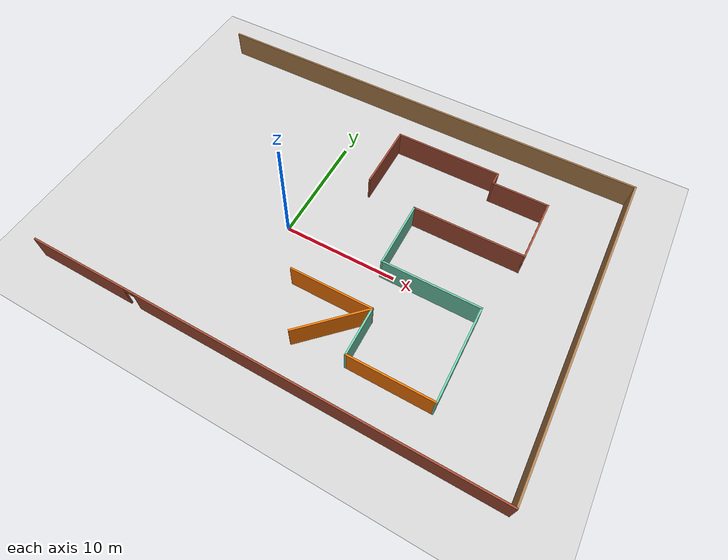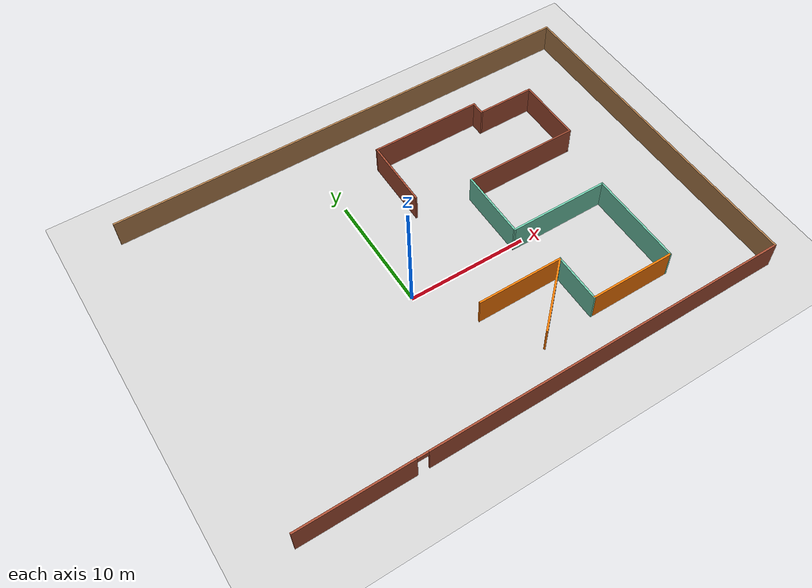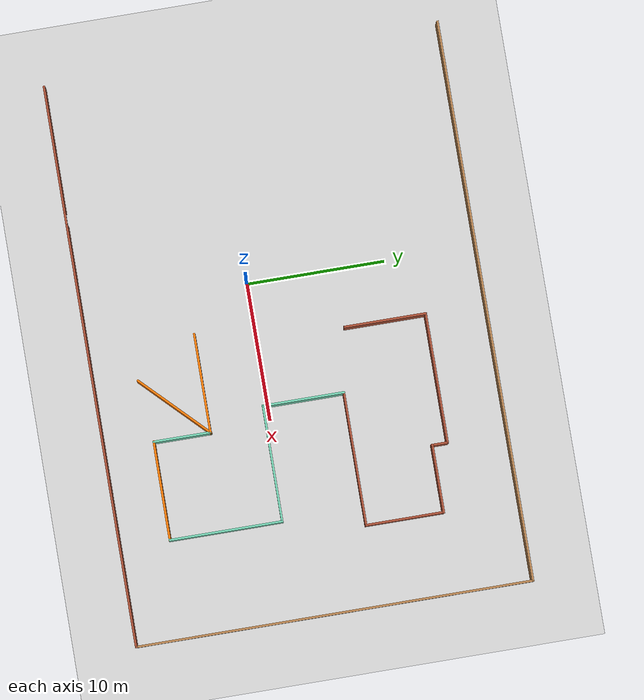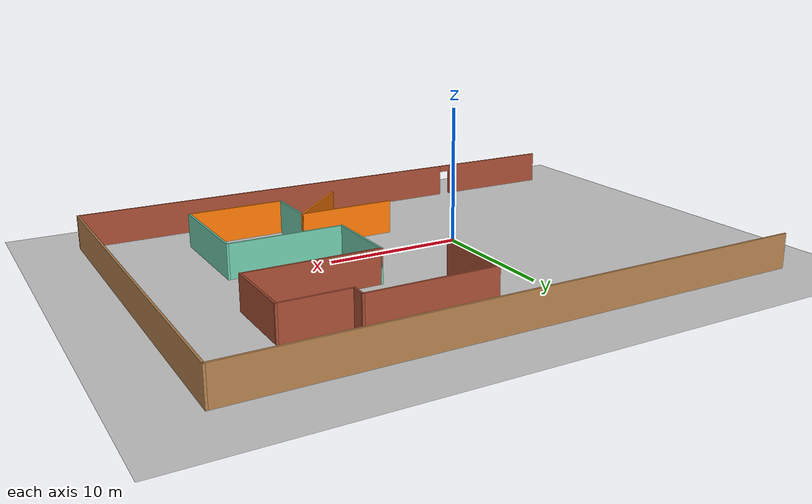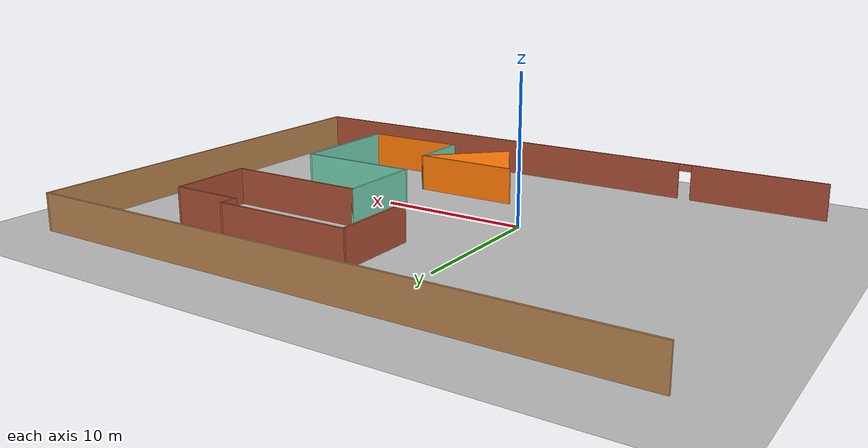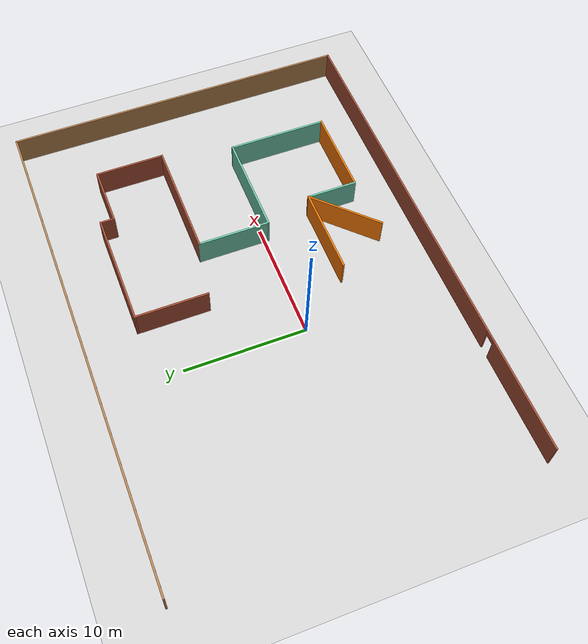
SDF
<sdf version="1.7">
 <world name="default">
  <model name="ground_plane">
   <static>true</static>
   <link name="link">
    <collision name="collision">
     <geometry><plane><normal>0 0 1</normal><size>100 100</size></plane></geometry>
    </collision>
    <visual name="visual">
     <geometry><plane><normal>0 0 1</normal><size>100 100</size></plane></geometry>
     <material>
      <ambient>0.8 0.8 0.8 1</ambient>
      <diffuse>0.8 0.8 0.8 1</diffuse>
      <specular>0.8 0.8 0.8 1</specular>
     </material>
    </visual>
   </link>
  </model>
  <model name="AMR_navigation_world">
   <link name="Wall_12">
    <pose>0.062232 14.2722 0 0 -0 0</pose>
    <visual name="Wall_12_Visual">
     <pose>0 0 1.25 0 -0 0</pose>
     <geometry><box><size>40.75 0.15 2.5</size></box></geometry>
     <material>
      <script><uri>file://media/materials/scripts/gazebo.material</uri><name>Gazebo/Wood</name></script>
      <ambient>0 1 0 1</ambient>
      <shader type="pixel"/>
     </material>
     <meta><layer>0</layer></meta>
    </visual>
    <collision name="Wall_12_Collision">
     <pose>0 0 1.25 0 -0 0</pose>
     <geometry><box><size>40.75 0.15 2.5</size></box></geometry>
     <surface>
      <friction>
       <ode><mu>1</mu><mu2>1</mu2><fdir1>0 0 0</fdir1><slip1>0</slip1><slip2>0</slip2></ode>
       <torsional>
        <coefficient>1</coefficient>
        <patch_radius>0</patch_radius>
        <surface_radius>0</surface_radius>
        <use_patch_radius>1</use_patch_radius>
        <ode><slip>0</slip></ode>
       </torsional>
      </friction>
      <bounce><restitution_coefficient>0</restitution_coefficient><threshold>1e+06</threshold></bounce>
      <contact>
       <collide_without_contact>0</collide_without_contact>
       <collide_without_contact_bitmask>1</collide_without_contact_bitmask>
       <collide_bitmask>1</collide_bitmask>
       <ode>
        <soft_cfm>0</soft_cfm>
        <soft_erp>0.2</soft_erp>
        <kp>1e+13</kp>
        <kd>1</kd>
        <max_vel>0.01</max_vel>
        <min_depth>0</min_depth>
       </ode>
       <bullet>
        <split_impulse>1</split_impulse>
        <split_impulse_penetration_threshold>-0.01</split_impulse_penetration_threshold>
        <soft_cfm>0</soft_cfm>
        <soft_erp>0.2</soft_erp>
        <kp>1e+13</kp>
        <kd>1</kd>
       </bullet>
      </contact>
     </surface>
    </collision>
   </link>
   <link name="Wall_13">
    <pose>20.3622 -0.027791 0 0 0 -1.5708</pose>
    <visual name="Wall_13_Visual">
     <pose>0 0 1.25 0 -0 0</pose>
     <geometry><box><size>28.75 0.15 2.5</size></box></geometry>
     <material>
      <script><uri>file://media/materials/scripts/gazebo.material</uri><name>Gazebo/Wood</name></script>
      <ambient>0 0 1 1</ambient>
      <shader type="pixel"/>
     </material>
     <meta><layer>0</layer></meta>
    </visual>
    <collision name="Wall_13_Collision">
     <pose>0 0 1.25 0 -0 0</pose>
     <geometry><box><size>28.75 0.15 2.5</size></box></geometry>
     <surface>
      <friction>
       <ode><mu>1</mu><mu2>1</mu2><fdir1>0 0 0</fdir1><slip1>0</slip1><slip2>0</slip2></ode>
       <torsional>
        <coefficient>1</coefficient>
        <patch_radius>0</patch_radius>
        <surface_radius>0</surface_radius>
        <use_patch_radius>1</use_patch_radius>
        <ode><slip>0</slip></ode>
       </torsional>
      </friction>
      <bounce><restitution_coefficient>0</restitution_coefficient><threshold>1e+06</threshold></bounce>
      <contact>
       <collide_without_contact>0</collide_without_contact>
       <collide_without_contact_bitmask>1</collide_without_contact_bitmask>
       <collide_bitmask>1</collide_bitmask>
       <ode>
        <soft_cfm>0</soft_cfm>
        <soft_erp>0.2</soft_erp>
        <kp>1e+13</kp>
        <kd>1</kd>
        <max_vel>0.01</max_vel>
        <min_depth>0</min_depth>
       </ode>
       <bullet>
        <split_impulse>1</split_impulse>
        <split_impulse_penetration_threshold>-0.01</split_impulse_penetration_threshold>
        <soft_cfm>0</soft_cfm>
        <soft_erp>0.2</soft_erp>
        <kp>1e+13</kp>
        <kd>1</kd>
       </bullet>
      </contact>
     </surface>
    </collision>
   </link>
   <link name="Wall_14">
    <pose>0.062232 -14.3278 0 0 -0 3.14159</pose>
    <visual name="Wall_14_Visual_0">
     <pose>-5.04987 0 1.25 0 -0 0</pose>
     <geometry><box><size>30.6503 0.15 2.5</size></box></geometry>
     <material>
      <script><uri>file://media/materials/scripts/gazebo.material</uri><name>Gazebo/Bricks</name></script>
      <ambient>1 1 0 1</ambient>
      <shader type="pixel"/>
     </material>
     <meta><layer>0</layer></meta>
    </visual>
    <visual name="Wall_14_Visual_1">
     <pose>15.7751 0 1.25 0 -0 0</pose>
     <geometry><box><size>9.19974 0.15 2.5</size></box></geometry>
     <material>
      <script><uri>file://media/materials/scripts/gazebo.material</uri><name>Gazebo/Bricks</name></script>
      <ambient>1 1 1 1</ambient>
      <shader type="pixel"/>
     </material>
     <meta><layer>0</layer></meta>
    </visual>
    <visual name="Wall_14_Visual_2">
     <pose>10.7253 0 2.25 0 -0 0</pose>
     <geometry><box><size>0.9 0.15 0.5</size></box></geometry>
     <material>
      <script><uri>file://media/materials/scripts/gazebo.material</uri><name>Gazebo/Bricks</name></script>
      <ambient>1 1 1 1</ambient>
      <shader type="pixel"/>
     </material>
     <meta><layer>0</layer></meta>
    </visual>
    <collision name="Wall_14_Collision_0">
     <pose>-5.04987 0 1.25 0 -0 0</pose>
     <geometry><box><size>30.6503 0.15 2.5</size></box></geometry>
     <surface>
      <friction>
       <ode><mu>1</mu><mu2>1</mu2><fdir1>0 0 0</fdir1><slip1>0</slip1><slip2>0</slip2></ode>
       <torsional>
        <coefficient>1</coefficient>
        <patch_radius>0</patch_radius>
        <surface_radius>0</surface_radius>
        <use_patch_radius>1</use_patch_radius>
        <ode><slip>0</slip></ode>
       </torsional>
      </friction>
      <bounce><restitution_coefficient>0</restitution_coefficient><threshold>1e+06</threshold></bounce>
      <contact>
       <collide_without_contact>0</collide_without_contact>
       <collide_without_contact_bitmask>1</collide_without_contact_bitmask>
       <collide_bitmask>1</collide_bitmask>
       <ode>
        <soft_cfm>0</soft_cfm>
        <soft_erp>0.2</soft_erp>
        <kp>1e+13</kp>
        <kd>1</kd>
        <max_vel>0.01</max_vel>
        <min_depth>0</min_depth>
       </ode>
       <bullet>
        <split_impulse>1</split_impulse>
        <split_impulse_penetration_threshold>-0.01</split_impulse_penetration_threshold>
        <soft_cfm>0</soft_cfm>
        <soft_erp>0.2</soft_erp>
        <kp>1e+13</kp>
        <kd>1</kd>
       </bullet>
      </contact>
     </surface>
    </collision>
    <collision name="Wall_14_Collision_1">
     <pose>15.7751 0 1.25 0 -0 0</pose>
     <geometry><box><size>9.19974 0.15 2.5</size></box></geometry>
     <surface>
      <friction>
       <ode><mu>1</mu><mu2>1</mu2><fdir1>0 0 0</fdir1><slip1>0</slip1><slip2>0</slip2></ode>
       <torsional>
        <coefficient>1</coefficient>
        <patch_radius>0</patch_radius>
        <surface_radius>0</surface_radius>
        <use_patch_radius>1</use_patch_radius>
        <ode><slip>0</slip></ode>
       </torsional>
      </friction>
      <bounce><restitution_coefficient>0</restitution_coefficient><threshold>1e+06</threshold></bounce>
      <contact>
       <collide_without_contact>0</collide_without_contact>
       <collide_without_contact_bitmask>1</collide_without_contact_bitmask>
       <collide_bitmask>1</collide_bitmask>
       <ode>
        <soft_cfm>0</soft_cfm>
        <soft_erp>0.2</soft_erp>
        <kp>1e+13</kp>
        <kd>1</kd>
        <max_vel>0.01</max_vel>
        <min_depth>0</min_depth>
       </ode>
       <bullet>
        <split_impulse>1</split_impulse>
        <split_impulse_penetration_threshold>-0.01</split_impulse_penetration_threshold>
        <soft_cfm>0</soft_cfm>
        <soft_erp>0.2</soft_erp>
        <kp>1e+13</kp>
        <kd>1</kd>
       </bullet>
      </contact>
     </surface>
    </collision>
    <collision name="Wall_14_Collision_2">
     <pose>10.7253 0 2.25 0 -0 0</pose>
     <geometry><box><size>0.9 0.15 0.5</size></box></geometry>
     <surface>
      <friction>
       <ode><mu>1</mu><mu2>1</mu2><fdir1>0 0 0</fdir1><slip1>0</slip1><slip2>0</slip2></ode>
       <torsional>
        <coefficient>1</coefficient>
        <patch_radius>0</patch_radius>
        <surface_radius>0</surface_radius>
        <use_patch_radius>1</use_patch_radius>
        <ode><slip>0</slip></ode>
       </torsional>
      </friction>
      <bounce><restitution_coefficient>0</restitution_coefficient><threshold>1e+06</threshold></bounce>
      <contact>
       <collide_without_contact>0</collide_without_contact>
       <collide_without_contact_bitmask>1</collide_without_contact_bitmask>
       <collide_bitmask>1</collide_bitmask>
       <ode>
        <soft_cfm>0</soft_cfm>
        <soft_erp>0.2</soft_erp>
        <kp>1e+13</kp>
        <kd>1</kd>
        <max_vel>0.01</max_vel>
        <min_depth>0</min_depth>
       </ode>
       <bullet>
        <split_impulse>1</split_impulse>
        <split_impulse_penetration_threshold>-0.01</split_impulse_penetration_threshold>
        <soft_cfm>0</soft_cfm>
        <soft_erp>0.2</soft_erp>
        <kp>1e+13</kp>
        <kd>1</kd>
       </bullet>
      </contact>
     </surface>
    </collision>
   </link>
   <link name="Wall_20">
    <pose>2.61467 -6.62104 0 0 -0 0</pose>
    <visual name="Wall_20_Visual">
     <pose>0 0 1.25 0 -0 0</pose>
     <geometry><box><size>7.25 0.15 2.5</size></box></geometry>
     <material>
      <script><uri>file://media/materials/scripts/gazebo.material</uri><name>Gazebo/Grey</name></script>
      <ambient>0.996078 0.47451 0.0196078 1</ambient>
      <shader type="pixel"/>
     </material>
     <meta><layer>0</layer></meta>
    </visual>
    <collision name="Wall_20_Collision">
     <pose>0 0 1.25 0 -0 0</pose>
     <geometry><box><size>7.25 0.15 2.5</size></box></geometry>
     <surface>
      <friction>
       <ode><mu>1</mu><mu2>1</mu2><fdir1>0 0 0</fdir1><slip1>0</slip1><slip2>0</slip2></ode>
       <torsional>
        <coefficient>1</coefficient>
        <patch_radius>0</patch_radius>
        <surface_radius>0</surface_radius>
        <use_patch_radius>1</use_patch_radius>
        <ode><slip>0</slip></ode>
       </torsional>
      </friction>
      <bounce><restitution_coefficient>0</restitution_coefficient><threshold>1e+06</threshold></bounce>
      <contact>
       <collide_without_contact>0</collide_without_contact>
       <collide_without_contact_bitmask>1</collide_without_contact_bitmask>
       <collide_bitmask>1</collide_bitmask>
       <ode>
        <soft_cfm>0</soft_cfm>
        <soft_erp>0.2</soft_erp>
        <kp>1e+13</kp>
        <kd>1</kd>
        <max_vel>0.01</max_vel>
        <min_depth>0</min_depth>
       </ode>
       <bullet>
        <split_impulse>1</split_impulse>
        <split_impulse_penetration_threshold>-0.01</split_impulse_penetration_threshold>
        <soft_cfm>0</soft_cfm>
        <soft_erp>0.2</soft_erp>
        <kp>1e+13</kp>
        <kd>1</kd>
       </bullet>
      </contact>
     </surface>
    </collision>
   </link>
   <link name="Wall_21">
    <pose>6.16467 -8.67104 0 0 0 -1.5708</pose>
    <visual name="Wall_21_Visual">
     <pose>0 0 1.25 0 -0 0</pose>
     <geometry><box><size>4.25 0.15 2.5</size></box></geometry>
     <material>
      <script><uri>file://media/materials/scripts/gazebo.material</uri><name>Gazebo/Grey</name></script>
      <ambient>0.435294 0.796078 0.67451 1</ambient>
      <shader type="pixel"/>
     </material>
     <meta><layer>0</layer></meta>
    </visual>
    <collision name="Wall_21_Collision">
     <pose>0 0 1.25 0 -0 0</pose>
     <geometry><box><size>4.25 0.15 2.5</size></box></geometry>
     <surface>
      <friction>
       <ode><mu>1</mu><mu2>1</mu2><fdir1>0 0 0</fdir1><slip1>0</slip1><slip2>0</slip2></ode>
       <torsional>
        <coefficient>1</coefficient>
        <patch_radius>0</patch_radius>
        <surface_radius>0</surface_radius>
        <use_patch_radius>1</use_patch_radius>
        <ode><slip>0</slip></ode>
       </torsional>
      </friction>
      <bounce><restitution_coefficient>0</restitution_coefficient><threshold>1e+06</threshold></bounce>
      <contact>
       <collide_without_contact>0</collide_without_contact>
       <collide_without_contact_bitmask>1</collide_without_contact_bitmask>
       <collide_bitmask>1</collide_bitmask>
       <ode>
        <soft_cfm>0</soft_cfm>
        <soft_erp>0.2</soft_erp>
        <kp>1e+13</kp>
        <kd>1</kd>
        <max_vel>0.01</max_vel>
        <min_depth>0</min_depth>
       </ode>
       <bullet>
        <split_impulse>1</split_impulse>
        <split_impulse_penetration_threshold>-0.01</split_impulse_penetration_threshold>
        <soft_cfm>0</soft_cfm>
        <soft_erp>0.2</soft_erp>
        <kp>1e+13</kp>
        <kd>1</kd>
       </bullet>
      </contact>
     </surface>
    </collision>
   </link>
   <link name="Wall_22">
    <pose>9.71467 -10.721 0 0 -0 0</pose>
    <visual name="Wall_22_Visual">
     <pose>0 0 1.25 0 -0 0</pose>
     <geometry><box><size>7.25 0.15 2.5</size></box></geometry>
     <material>
      <script><uri>file://media/materials/scripts/gazebo.material</uri><name>Gazebo/Grey</name></script>
      <ambient>0.996078 0.47451 0.0196078 1</ambient>
      <shader type="pixel"/>
     </material>
     <meta><layer>0</layer></meta>
    </visual>
    <collision name="Wall_22_Collision">
     <pose>0 0 1.25 0 -0 0</pose>
     <geometry><box><size>7.25 0.15 2.5</size></box></geometry>
     <surface>
      <friction>
       <ode><mu>1</mu><mu2>1</mu2><fdir1>0 0 0</fdir1><slip1>0</slip1><slip2>0</slip2></ode>
       <torsional>
        <coefficient>1</coefficient>
        <patch_radius>0</patch_radius>
        <surface_radius>0</surface_radius>
        <use_patch_radius>1</use_patch_radius>
        <ode><slip>0</slip></ode>
       </torsional>
      </friction>
      <bounce><restitution_coefficient>0</restitution_coefficient><threshold>1e+06</threshold></bounce>
      <contact>
       <collide_without_contact>0</collide_without_contact>
       <collide_without_contact_bitmask>1</collide_without_contact_bitmask>
       <collide_bitmask>1</collide_bitmask>
       <ode>
        <soft_cfm>0</soft_cfm>
        <soft_erp>0.2</soft_erp>
        <kp>1e+13</kp>
        <kd>1</kd>
        <max_vel>0.01</max_vel>
        <min_depth>0</min_depth>
       </ode>
       <bullet>
        <split_impulse>1</split_impulse>
        <split_impulse_penetration_threshold>-0.01</split_impulse_penetration_threshold>
        <soft_cfm>0</soft_cfm>
        <soft_erp>0.2</soft_erp>
        <kp>1e+13</kp>
        <kd>1</kd>
       </bullet>
      </contact>
     </surface>
    </collision>
   </link>
   <link name="Wall_23">
    <pose>13.2647 -6.67104 0 0 -0 1.5708</pose>
    <visual name="Wall_23_Visual">
     <pose>0 0 1.25 0 -0 0</pose>
     <geometry><box><size>8.25 0.15 2.5</size></box></geometry>
     <material>
      <script><uri>file://media/materials/scripts/gazebo.material</uri><name>Gazebo/Grey</name></script>
      <ambient>0.435294 0.796078 0.67451 1</ambient>
      <shader type="pixel"/>
     </material>
     <meta><layer>0</layer></meta>
    </visual>
    <collision name="Wall_23_Collision">
     <pose>0 0 1.25 0 -0 0</pose>
     <geometry><box><size>8.25 0.15 2.5</size></box></geometry>
     <surface>
      <friction>
       <ode><mu>1</mu><mu2>1</mu2><fdir1>0 0 0</fdir1><slip1>0</slip1><slip2>0</slip2></ode>
       <torsional>
        <coefficient>1</coefficient>
        <patch_radius>0</patch_radius>
        <surface_radius>0</surface_radius>
        <use_patch_radius>1</use_patch_radius>
        <ode><slip>0</slip></ode>
       </torsional>
      </friction>
      <bounce><restitution_coefficient>0</restitution_coefficient><threshold>1e+06</threshold></bounce>
      <contact>
       <collide_without_contact>0</collide_without_contact>
       <collide_without_contact_bitmask>1</collide_without_contact_bitmask>
       <collide_bitmask>1</collide_bitmask>
       <ode>
        <soft_cfm>0</soft_cfm>
        <soft_erp>0.2</soft_erp>
        <kp>1e+13</kp>
        <kd>1</kd>
        <max_vel>0.01</max_vel>
        <min_depth>0</min_depth>
       </ode>
       <bullet>
        <split_impulse>1</split_impulse>
        <split_impulse_penetration_threshold>-0.01</split_impulse_penetration_threshold>
        <soft_cfm>0</soft_cfm>
        <soft_erp>0.2</soft_erp>
        <kp>1e+13</kp>
        <kd>1</kd>
       </bullet>
      </contact>
     </surface>
    </collision>
   </link>
   <link name="Wall_24">
    <pose>9.08967 -2.62104 0 0 -0 3.14159</pose>
    <visual name="Wall_24_Visual">
     <pose>0 0 1.25 0 -0 0</pose>
     <geometry><box><size>8.5 0.15 2.5</size></box></geometry>
     <material>
      <script><uri>file://media/materials/scripts/gazebo.material</uri><name>Gazebo/Grey</name></script>
      <ambient>0.435294 0.796078 0.67451 1</ambient>
      <shader type="pixel"/>
     </material>
     <meta><layer>0</layer></meta>
    </visual>
    <collision name="Wall_24_Collision">
     <pose>0 0 1.25 0 -0 0</pose>
     <geometry><box><size>8.5 0.15 2.5</size></box></geometry>
     <surface>
      <friction>
       <ode><mu>1</mu><mu2>1</mu2><fdir1>0 0 0</fdir1><slip1>0</slip1><slip2>0</slip2></ode>
       <torsional>
        <coefficient>1</coefficient>
        <patch_radius>0</patch_radius>
        <surface_radius>0</surface_radius>
        <use_patch_radius>1</use_patch_radius>
        <ode><slip>0</slip></ode>
       </torsional>
      </friction>
      <bounce><restitution_coefficient>0</restitution_coefficient><threshold>1e+06</threshold></bounce>
      <contact>
       <collide_without_contact>0</collide_without_contact>
       <collide_without_contact_bitmask>1</collide_without_contact_bitmask>
       <collide_bitmask>1</collide_bitmask>
       <ode>
        <soft_cfm>0</soft_cfm>
        <soft_erp>0.2</soft_erp>
        <kp>1e+13</kp>
        <kd>1</kd>
        <max_vel>0.01</max_vel>
        <min_depth>0</min_depth>
       </ode>
       <bullet>
        <split_impulse>1</split_impulse>
        <split_impulse_penetration_threshold>-0.01</split_impulse_penetration_threshold>
        <soft_cfm>0</soft_cfm>
        <soft_erp>0.2</soft_erp>
        <kp>1e+13</kp>
        <kd>1</kd>
       </bullet>
      </contact>
     </surface>
    </collision>
   </link>
   <link name="Wall_25">
    <pose>4.91467 0.303959 0 0 -0 1.5708</pose>
    <visual name="Wall_25_Visual">
     <pose>0 0 1.25 0 -0 0</pose>
     <geometry><box><size>6 0.15 2.5</size></box></geometry>
     <material>
      <script><uri>file://media/materials/scripts/gazebo.material</uri><name>Gazebo/Grey</name></script>
      <ambient>0.435294 0.796078 0.67451 1</ambient>
      <shader type="pixel"/>
     </material>
     <meta><layer>0</layer></meta>
    </visual>
    <collision name="Wall_25_Collision">
     <pose>0 0 1.25 0 -0 0</pose>
     <geometry><box><size>6 0.15 2.5</size></box></geometry>
     <surface>
      <friction>
       <ode><mu>1</mu><mu2>1</mu2><fdir1>0 0 0</fdir1><slip1>0</slip1><slip2>0</slip2></ode>
       <torsional>
        <coefficient>1</coefficient>
        <patch_radius>0</patch_radius>
        <surface_radius>0</surface_radius>
        <use_patch_radius>1</use_patch_radius>
        <ode><slip>0</slip></ode>
       </torsional>
      </friction>
      <bounce><restitution_coefficient>0</restitution_coefficient><threshold>1e+06</threshold></bounce>
      <contact>
       <collide_without_contact>0</collide_without_contact>
       <collide_without_contact_bitmask>1</collide_without_contact_bitmask>
       <collide_bitmask>1</collide_bitmask>
       <ode>
        <soft_cfm>0</soft_cfm>
        <soft_erp>0.2</soft_erp>
        <kp>1e+13</kp>
        <kd>1</kd>
        <max_vel>0.01</max_vel>
        <min_depth>0</min_depth>
       </ode>
       <bullet>
        <split_impulse>1</split_impulse>
        <split_impulse_penetration_threshold>-0.01</split_impulse_penetration_threshold>
        <soft_cfm>0</soft_cfm>
        <soft_erp>0.2</soft_erp>
        <kp>1e+13</kp>
        <kd>1</kd>
       </bullet>
      </contact>
     </surface>
    </collision>
   </link>
   <link name="Wall_26">
    <pose>9.71467 3.22896 0 0 -0 0</pose>
    <visual name="Wall_26_Visual">
     <pose>0 0 1.25 0 -0 0</pose>
     <geometry><box><size>9.75 0.15 2.5</size></box></geometry>
     <material>
      <script><uri>file://media/materials/scripts/gazebo.material</uri><name>Gazebo/Bricks</name></script>
      <ambient>1 1 1 1</ambient>
      <shader type="pixel"/>
     </material>
     <meta><layer>0</layer></meta>
    </visual>
    <collision name="Wall_26_Collision">
     <pose>0 0 1.25 0 -0 0</pose>
     <geometry><box><size>9.75 0.15 2.5</size></box></geometry>
     <surface>
      <friction>
       <ode><mu>1</mu><mu2>1</mu2><fdir1>0 0 0</fdir1><slip1>0</slip1><slip2>0</slip2></ode>
       <torsional>
        <coefficient>1</coefficient>
        <patch_radius>0</patch_radius>
        <surface_radius>0</surface_radius>
        <use_patch_radius>1</use_patch_radius>
        <ode><slip>0</slip></ode>
       </torsional>
      </friction>
      <bounce><restitution_coefficient>0</restitution_coefficient><threshold>1e+06</threshold></bounce>
      <contact>
       <collide_without_contact>0</collide_without_contact>
       <collide_without_contact_bitmask>1</collide_without_contact_bitmask>
       <collide_bitmask>1</collide_bitmask>
       <ode>
        <soft_cfm>0</soft_cfm>
        <soft_erp>0.2</soft_erp>
        <kp>1e+13</kp>
        <kd>1</kd>
        <max_vel>0.01</max_vel>
        <min_depth>0</min_depth>
       </ode>
       <bullet>
        <split_impulse>1</split_impulse>
        <split_impulse_penetration_threshold>-0.01</split_impulse_penetration_threshold>
        <soft_cfm>0</soft_cfm>
        <soft_erp>0.2</soft_erp>
        <kp>1e+13</kp>
        <kd>1</kd>
       </bullet>
      </contact>
     </surface>
    </collision>
   </link>
   <link name="Wall_27">
    <pose>14.5147 6.02896 0 0 -0 1.5708</pose>
    <visual name="Wall_27_Visual">
     <pose>0 0 1.25 0 -0 0</pose>
     <geometry><box><size>5.75 0.15 2.5</size></box></geometry>
     <material>
      <script><uri>file://media/materials/scripts/gazebo.material</uri><name>Gazebo/Bricks</name></script>
      <ambient>1 1 1 1</ambient>
      <shader type="pixel"/>
     </material>
     <meta><layer>0</layer></meta>
    </visual>
    <collision name="Wall_27_Collision">
     <pose>0 0 1.25 0 -0 0</pose>
     <geometry><box><size>5.75 0.15 2.5</size></box></geometry>
     <surface>
      <friction>
       <ode><mu>1</mu><mu2>1</mu2><fdir1>0 0 0</fdir1><slip1>0</slip1><slip2>0</slip2></ode>
       <torsional>
        <coefficient>1</coefficient>
        <patch_radius>0</patch_radius>
        <surface_radius>0</surface_radius>
        <use_patch_radius>1</use_patch_radius>
        <ode><slip>0</slip></ode>
       </torsional>
      </friction>
      <bounce><restitution_coefficient>0</restitution_coefficient><threshold>1e+06</threshold></bounce>
      <contact>
       <collide_without_contact>0</collide_without_contact>
       <collide_without_contact_bitmask>1</collide_without_contact_bitmask>
       <collide_bitmask>1</collide_bitmask>
       <ode>
        <soft_cfm>0</soft_cfm>
        <soft_erp>0.2</soft_erp>
        <kp>1e+13</kp>
        <kd>1</kd>
        <max_vel>0.01</max_vel>
        <min_depth>0</min_depth>
       </ode>
       <bullet>
        <split_impulse>1</split_impulse>
        <split_impulse_penetration_threshold>-0.01</split_impulse_penetration_threshold>
        <soft_cfm>0</soft_cfm>
        <soft_erp>0.2</soft_erp>
        <kp>1e+13</kp>
        <kd>1</kd>
       </bullet>
      </contact>
     </surface>
    </collision>
   </link>
   <link name="Wall_28">
    <pose>12.0897 8.82896 0 0 -0 3.14159</pose>
    <visual name="Wall_28_Visual">
     <pose>0 0 1.25 0 -0 0</pose>
     <geometry><box><size>5 0.15 2.5</size></box></geometry>
     <material>
      <script><uri>file://media/materials/scripts/gazebo.material</uri><name>Gazebo/Bricks</name></script>
      <ambient>1 1 1 1</ambient>
      <shader type="pixel"/>
     </material>
     <meta><layer>0</layer></meta>
    </visual>
    <collision name="Wall_28_Collision">
     <pose>0 0 1.25 0 -0 0</pose>
     <geometry><box><size>5 0.15 2.5</size></box></geometry>
     <surface>
      <friction>
       <ode><mu>1</mu><mu2>1</mu2><fdir1>0 0 0</fdir1><slip1>0</slip1><slip2>0</slip2></ode>
       <torsional>
        <coefficient>1</coefficient>
        <patch_radius>0</patch_radius>
        <surface_radius>0</surface_radius>
        <use_patch_radius>1</use_patch_radius>
        <ode><slip>0</slip></ode>
       </torsional>
      </friction>
      <bounce><restitution_coefficient>0</restitution_coefficient><threshold>1e+06</threshold></bounce>
      <contact>
       <collide_without_contact>0</collide_without_contact>
       <collide_without_contact_bitmask>1</collide_without_contact_bitmask>
       <collide_bitmask>1</collide_bitmask>
       <ode>
        <soft_cfm>0</soft_cfm>
        <soft_erp>0.2</soft_erp>
        <kp>1e+13</kp>
        <kd>1</kd>
        <max_vel>0.01</max_vel>
        <min_depth>0</min_depth>
       </ode>
       <bullet>
        <split_impulse>1</split_impulse>
        <split_impulse_penetration_threshold>-0.01</split_impulse_penetration_threshold>
        <soft_cfm>0</soft_cfm>
        <soft_erp>0.2</soft_erp>
        <kp>1e+13</kp>
        <kd>1</kd>
       </bullet>
      </contact>
     </surface>
    </collision>
   </link>
   <link name="Wall_29">
    <pose>9.66467 9.37896 0 0 -0 1.5708</pose>
    <visual name="Wall_29_Visual">
     <pose>0 0 1.25 0 -0 0</pose>
     <geometry><box><size>1.25 0.15 2.5</size></box></geometry>
     <material>
      <script><uri>file://media/materials/scripts/gazebo.material</uri><name>Gazebo/Bricks</name></script>
      <ambient>1 1 1 1</ambient>
      <shader type="pixel"/>
     </material>
     <meta><layer>0</layer></meta>
    </visual>
    <collision name="Wall_29_Collision">
     <pose>0 0 1.25 0 -0 0</pose>
     <geometry><box><size>1.25 0.15 2.5</size></box></geometry>
     <surface>
      <friction>
       <ode><mu>1</mu><mu2>1</mu2><fdir1>0 0 0</fdir1><slip1>0</slip1><slip2>0</slip2></ode>
       <torsional>
        <coefficient>1</coefficient>
        <patch_radius>0</patch_radius>
        <surface_radius>0</surface_radius>
        <use_patch_radius>1</use_patch_radius>
        <ode><slip>0</slip></ode>
       </torsional>
      </friction>
      <bounce><restitution_coefficient>0</restitution_coefficient><threshold>1e+06</threshold></bounce>
      <contact>
       <collide_without_contact>0</collide_without_contact>
       <collide_without_contact_bitmask>1</collide_without_contact_bitmask>
       <collide_bitmask>1</collide_bitmask>
       <ode>
        <soft_cfm>0</soft_cfm>
        <soft_erp>0.2</soft_erp>
        <kp>1e+13</kp>
        <kd>1</kd>
        <max_vel>0.01</max_vel>
        <min_depth>0</min_depth>
       </ode>
       <bullet>
        <split_impulse>1</split_impulse>
        <split_impulse_penetration_threshold>-0.01</split_impulse_penetration_threshold>
        <soft_cfm>0</soft_cfm>
        <soft_erp>0.2</soft_erp>
        <kp>1e+13</kp>
        <kd>1</kd>
       </bullet>
      </contact>
     </surface>
    </collision>
   </link>
   <link name="Wall_30">
    <pose>4.98967 9.92896 0 0 -0 3.14159</pose>
    <visual name="Wall_30_Visual">
     <pose>0 0 1.25 0 -0 0</pose>
     <geometry><box><size>9.5 0.15 2.5</size></box></geometry>
     <material>
      <script><uri>file://media/materials/scripts/gazebo.material</uri><name>Gazebo/Bricks</name></script>
      <ambient>1 1 1 1</ambient>
      <shader type="pixel"/>
     </material>
     <meta><layer>0</layer></meta>
    </visual>
    <collision name="Wall_30_Collision">
     <pose>0 0 1.25 0 -0 0</pose>
     <geometry><box><size>9.5 0.15 2.5</size></box></geometry>
     <surface>
      <friction>
       <ode><mu>1</mu><mu2>1</mu2><fdir1>0 0 0</fdir1><slip1>0</slip1><slip2>0</slip2></ode>
       <torsional>
        <coefficient>1</coefficient>
        <patch_radius>0</patch_radius>
        <surface_radius>0</surface_radius>
        <use_patch_radius>1</use_patch_radius>
        <ode><slip>0</slip></ode>
       </torsional>
      </friction>
      <bounce><restitution_coefficient>0</restitution_coefficient><threshold>1e+06</threshold></bounce>
      <contact>
       <collide_without_contact>0</collide_without_contact>
       <collide_without_contact_bitmask>1</collide_without_contact_bitmask>
       <collide_bitmask>1</collide_bitmask>
       <ode>
        <soft_cfm>0</soft_cfm>
        <soft_erp>0.2</soft_erp>
        <kp>1e+13</kp>
        <kd>1</kd>
        <max_vel>0.01</max_vel>
        <min_depth>0</min_depth>
       </ode>
       <bullet>
        <split_impulse>1</split_impulse>
        <split_impulse_penetration_threshold>-0.01</split_impulse_penetration_threshold>
        <soft_cfm>0</soft_cfm>
        <soft_erp>0.2</soft_erp>
        <kp>1e+13</kp>
        <kd>1</kd>
       </bullet>
      </contact>
     </surface>
    </collision>
   </link>
   <link name="Wall_31">
    <pose>0.314666 7.00396 0 0 0 -1.5708</pose>
    <visual name="Wall_31_Visual">
     <pose>0 0 1.25 0 -0 0</pose>
     <geometry><box><size>6 0.15 2.5</size></box></geometry>
     <material>
      <script><uri>file://media/materials/scripts/gazebo.material</uri><name>Gazebo/Bricks</name></script>
      <ambient>1 1 1 1</ambient>
      <shader type="pixel"/>
     </material>
     <meta><layer>0</layer></meta>
    </visual>
    <collision name="Wall_31_Collision">
     <pose>0 0 1.25 0 -0 0</pose>
     <geometry><box><size>6 0.15 2.5</size></box></geometry>
     <surface>
      <friction>
       <ode><mu>1</mu><mu2>1</mu2><fdir1>0 0 0</fdir1><slip1>0</slip1><slip2>0</slip2></ode>
       <torsional>
        <coefficient>1</coefficient>
        <patch_radius>0</patch_radius>
        <surface_radius>0</surface_radius>
        <use_patch_radius>1</use_patch_radius>
        <ode><slip>0</slip></ode>
       </torsional>
      </friction>
      <bounce><restitution_coefficient>0</restitution_coefficient><threshold>1e+06</threshold></bounce>
      <contact>
       <collide_without_contact>0</collide_without_contact>
       <collide_without_contact_bitmask>1</collide_without_contact_bitmask>
       <collide_bitmask>1</collide_bitmask>
       <ode>
        <soft_cfm>0</soft_cfm>
        <soft_erp>0.2</soft_erp>
        <kp>1e+13</kp>
        <kd>1</kd>
        <max_vel>0.01</max_vel>
        <min_depth>0</min_depth>
       </ode>
       <bullet>
        <split_impulse>1</split_impulse>
        <split_impulse_penetration_threshold>-0.01</split_impulse_penetration_threshold>
        <soft_cfm>0</soft_cfm>
        <soft_erp>0.2</soft_erp>
        <kp>1e+13</kp>
        <kd>1</kd>
       </bullet>
      </contact>
     </surface>
    </collision>
   </link>
   <link name="Wall_44">
    <pose>3.9196 -8.8661 0 0 0 -2.35619</pose>
    <visual name="Wall_44_Visual">
     <pose>0 0 1.25 0 -0 0</pose>
     <geometry><box><size>6.5 0.15 2.5</size></box></geometry>
     <material>
      <script><uri>file://media/materials/scripts/gazebo.material</uri><name>Gazebo/Grey</name></script>
      <ambient>0.996078 0.47451 0.0196078 1</ambient>
      <shader type="pixel"/>
     </material>
     <meta><layer>0</layer></meta>
    </visual>
    <collision name="Wall_44_Collision">
     <pose>0 0 1.25 0 -0 0</pose>
     <geometry><box><size>6.5 0.15 2.5</size></box></geometry>
     <surface>
      <friction>
       <ode><mu>1</mu><mu2>1</mu2><fdir1>0 0 0</fdir1><slip1>0</slip1><slip2>0</slip2></ode>
       <torsional>
        <coefficient>1</coefficient>
        <patch_radius>0</patch_radius>
        <surface_radius>0</surface_radius>
        <use_patch_radius>1</use_patch_radius>
        <ode><slip>0</slip></ode>
       </torsional>
      </friction>
      <bounce><restitution_coefficient>0</restitution_coefficient><threshold>1e+06</threshold></bounce>
      <contact>
       <collide_without_contact>0</collide_without_contact>
       <collide_without_contact_bitmask>1</collide_without_contact_bitmask>
       <collide_bitmask>1</collide_bitmask>
       <ode>
        <soft_cfm>0</soft_cfm>
        <soft_erp>0.2</soft_erp>
        <kp>1e+13</kp>
        <kd>1</kd>
        <max_vel>0.01</max_vel>
        <min_depth>0</min_depth>
       </ode>
       <bullet>
        <split_impulse>1</split_impulse>
        <split_impulse_penetration_threshold>-0.01</split_impulse_penetration_threshold>
        <soft_cfm>0</soft_cfm>
        <soft_erp>0.2</soft_erp>
        <kp>1e+13</kp>
        <kd>1</kd>
       </bullet>
      </contact>
     </surface>
    </collision>
   </link>
   <static>1</static>
   <pose>4.07188 2.29997 0 0 -0 0</pose>
  </model>
 </world>
</sdf>
